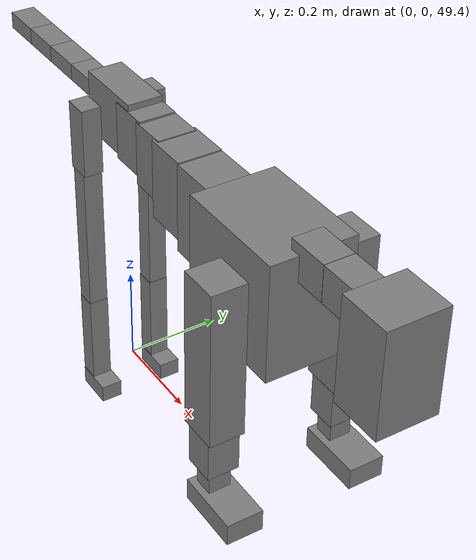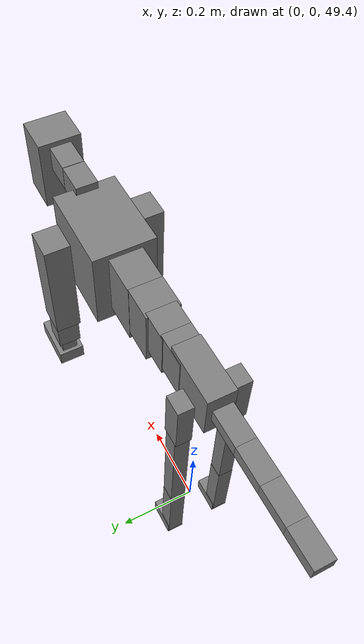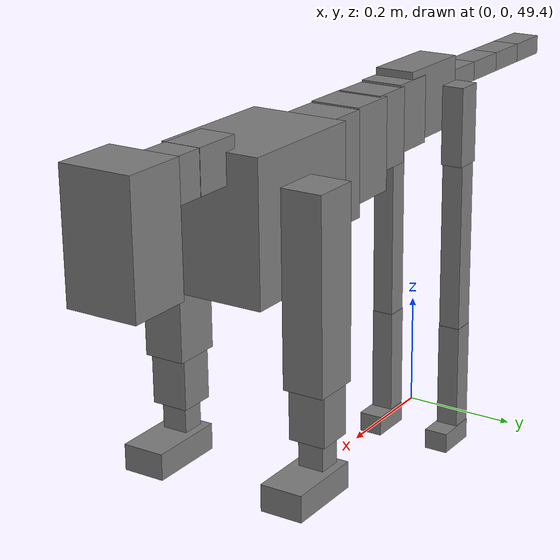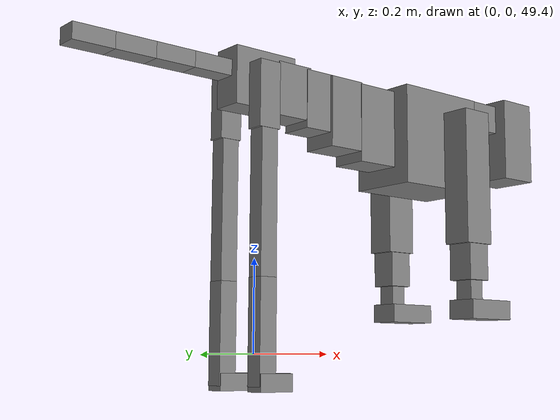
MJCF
<mujoco model="dog">

    <default>
        <joint armature="0.02" stiffness="1" damping="0.2" limited="true"/>
        <geom condim="3" friction="1 0.05 0.05" margin="0.01"/>
        <motor ctrllimited="true" ctrlrange="-1.0 1.0" forcelimited="true" gear="50"/>
    </default>

    <compiler inertiafromgeom="true" angle="radian"/>

    <option timestep="0.016" iterations="50" tolerance="1e-10" solver="Newton" jacobian="dense" cone="pyramidal"/>

    <size nconmax="20000" njmax="60000" nstack="5000000"/>
    <visual>
        <map force="0.1" zfar="30"/>
        <rgba haze="0.15 0.25 0.35 1"/>
        <quality shadowsize="2048"/>
        <global offwidth="800" offheight="800"/>
    </visual>

    <asset>
        <texture type="skybox" builtin="gradient" rgb1="0.3 0.5 0.7" rgb2="0 0 0" width="512" height="512"/>
        <texture name="texplane" type="2d" builtin="checker" rgb1=".2 .3 .4" rgb2=".1 0.15 0.2" width="512" height="512"
                 mark="cross" markrgb=".8 .8 .8"/>
        <texture name="texgeom" type="cube" builtin="flat" mark="cross" width="127" height="1278" rgb1="0.8 0.6 0.4"
                 rgb2="0.8 0.6 0.4" markrgb="1 1 1" random="0.01"/>

        <material name="matplane" reflectance="0.3" texture="texplane" texrepeat="1 1" texuniform="true"/>
        <material name="matgeom" texture="texgeom" texuniform="true" rgba="0.8 0.6 .4 1"/>
    </asset>

    <worldbody>
        <geom name="floor" pos="0 0 0" size="0 0 .25" type="plane" material="matplane" condim="3"/>

        <light directional="false" diffuse=".2 .2 .2" specular="0 0 0" pos="0 0 5" dir="0 0 -1" castshadow="false"/>
        <light mode="targetbodycom" target="torso" directional="false" diffuse=".8 .8 .8" specular="0.3 0.3 0.3"
               pos="0 0 4.0" dir="0 0 -1"/>

        <body name="root" pos="0 0 50">
            <freejoint name="root_1"/>
            <geom type="box" pos="0 0 -0.02" size="0.0774  0.0358  0.063" density="2030"/>

            <body name="spine1" pos="0.054 0 0">
                <joint name="spine1_y" axis="0 1 0" range="0 0.7" limited="true"/>
                <geom type="box" pos="0.02375 0 -0.03" size="0.04375  0.0375  0.05985" density="2030"/>

                <body name="spine2" pos="0.0612 0 0">
                    <joint name="spine2_y" axis="0 1 0" range="-0.15 0.15" limited="true"/>
                    <geom type="box" pos="0.03555  0  -0.04" size="0.04055  0.039  0.06615" density="2030"/>

                    <body name="spine3" pos="0.0730 0 0">
                        <joint name="spine3_y" axis="0 1 0" range="-0.15 0.15" limited="true"/>
                        <geom type="box" pos="0.03555  0  -0.057" size="0.04555  0.0445  0.081" density="2030"/>

                        <body name="spine4" pos="0.0780 0 0">
                            <joint name="spine4_y" axis="0 1 0" range="-0.15 0.15" limited="true"/>
                            <geom type="box" pos="0.05265  0  -0.07" size="0.05265  0.045  0.09135" density="2030"/>

                            <body name="torso" pos="0.1082 0 0">
                                <joint name="torso_y" axis="0 1 0" range="-0.15 0.15" limited="true"/>
                                <geom type="box" pos="0.11925  0  -0.085" size="0.11925  0.085  0.11745"
                                      density="2030"/>

                                <body name="neck1" pos="0.2160  0   0.0180">
                                    <joint name="neck1_y" axis="0 1 0" range="-1.2  -1" limited="true"/>
                                    <geom type="box" pos="0.0423  0  0" size="0.0423  0.03  0.036" density="2325"/>

                                    <body name="neck2" pos="0.0853  0  0">
                                        <joint name="neck2_y" axis="0 1 0" range="0.1  0" limited="true"/>
                                        <geom type="box" pos="0.0423  0  0" size="0.0423  0.03  0.036" density="2325"/>

                                        <body name="head" pos="0.0853  0  0">
                                            <joint name="head_y" axis="0 1 0" range="-0.3  -0.2" limited="true"/>
                                            <geom type="box" pos="0.0531  0  -0.055" size="0.0531  0.06  0.1044"
                                                  density="4030"/>

                                        </body>
                                    </body>
                                </body>

                                <body name="front_shoulder" pos="0.156  0   -0.0480">
                                    <joint name="front_shoulder_y" axis="0 1 0" range="-1 1.5" limited="true"/>
                                    <geom type="box" pos="0 0.13 -0.1330" size="0.0408  0.0349  0.1596" density="1158"/>
                                    <geom type="box" pos="0 -0.13 -0.1330" size="0.0408  0.0349  0.1596"
                                          density="1158"/>

                                    <body name="front_elbow" pos="0  0  -0.2659">
                                        <joint name="front_elbow_y" axis="0 1 0" range="-2 0" limited="true"/>
                                        <geom type="box" pos="0 0.13 -0.0561" size="0.0309  0.0316  0.0561"
                                              density="1081"/>
                                        <geom type="box" pos="0 -0.13 -0.0561" size="0.0309  0.0316  0.0561"
                                              density="1081"/>

                                        <body name="front_wrist" pos="0  0  -0.1122">
                                            <joint name="front_wrist_y" axis="0 1 0" range="-0.2 0" limited="true"/>
                                            <geom type="box" pos="0 0.13 -0.0304" size="0.0199  0.0221  0.0435"
                                                  density="1664"/>
                                            <geom type="box" pos="0 -0.13 -0.0304" size="0.0199  0.0221  0.0435"
                                                  density="1664"/>

                                            <body name="front_finger_end" pos="0  0  -0.0608">
                                                <joint name="front_finger_y" axis="0 1 0" range="-0.4 1"
                                                       limited="true"/>
                                                <geom type="box" pos="0.0364  0.13  -0.0074"
                                                      size="0.0666  0.0364  0.0224" density="1515"/>
                                                <geom type="box" pos="0.0364  -0.13  -0.0074"
                                                      size="0.0666  0.0364  0.0224" density="1515"/>

                                            </body>

                                        </body>
                                    </body>
                                </body>

                            </body>
                        </body>
                    </body>
                </body>
            </body>

            <body name="back_hip" pos="-0.03 0 -0.018">
                <joint name="back_hip_y" axis="0 1 0" range="-1.5 0.3" limited="true"/>
                <geom type="box" pos="0 0.07 -0.0487" size="0.0255  0.0200  0.0715" density="1154"/>
                <geom type="box" pos="0 -0.07 -0.0487" size="0.0255  0.0200  0.0715" density="1154"/>

                <body name="back_knee" pos="0  0  -0.0975">
                    <joint name="back_knee_y" axis="0 1 0" range="0 2.8" limited="true"/>
                    <geom type="box" pos="0 0.07 -0.1708" size="0.0199  0.0196  0.1863" density="1227"/>
                    <geom type="box" pos="0 -0.07 -0.1708" size="0.0199  0.0196  0.1863" density="1227"/>

                    <body name="back_ankle" pos="0  0  -0.3416">
                        <joint name="back_ankle_y" axis="0 1 0" range="-2.2 0" limited="true"/>
                        <geom type="box" pos="0 0.07 -0.0985" size="0.0202  0.0202  0.1098" density="1284"/>
                        <geom type="box" pos="0 -0.07 -0.0985" size="0.0202  0.0202  0.1098" density="1284"/>

                        <body name="back_toe_end" pos="0  0  -0.1970">
                            <joint name="back_toe_y" axis="0 1 0" range="-0.4 1" limited="true"/>
                            <geom type="box" pos="0.0219  0.07  -0.0035" size="0.0402  0.0219  0.0185" density="1515"/>
                            <geom type="box" pos="0.0219  -0.07  -0.0035" size="0.0402  0.0219  0.0185" density="1515"/>

                        </body>
                    </body>
                </body>
            </body>

            <body name="tail1" pos="-0.074 0 -0.006">
                <joint name="tail1_y" axis="0 1 0" range="-0.2 0.2" limited="true"/>
                <geom type="box" pos="-0.0536  0  0" size="0.045  0.025  0.0175" density="1587"/>

                <body name="tail2" pos="-0.09 0 0">
                    <joint name="tail2_y" axis="0 1 0" range="-0.2 0.2" limited="true"/>
                    <geom type="box" pos="-0.0536  0  0" size="0.045  0.025  0.0175" density="1587"/>

                    <body name="tail3" pos="-0.09 0 0">
                        <joint name="tail3_y" axis="0 1 0" range="-0.2 0.2" limited="true"/>
                        <geom type="box" pos="-0.0536  0  0" size="0.045  0.025  0.0175" density="1587"/>

                        <body name="tail4" pos="-0.09 0 0">
                            <joint name="tail4_y" axis="0 1 0" range="-0.2 0.2" limited="true"/>
                            <geom type="box" pos="-0.0536  0  0" size="0.045  0.025  0.0175" density="1587"/>

                        </body>
                    </body>
                </body>
            </body>
        </body>
    </worldbody>

    <actuator>
        <motor joint="spine1_y" forcerange="-150 150     "/>
        <motor joint="spine2_y" forcerange="-150 150     "/>
        <motor joint="spine3_y" forcerange="-150 150     "/>
        <motor joint="spine4_y" forcerange="-150 150     "/>
        <motor joint="torso_y" forcerange="-150 150     "/>
        <motor joint="neck1_y" forcerange="-100 100       "/>
        <motor joint="neck2_y" forcerange="-100 100       "/>
        <motor joint="head_y" forcerange="-150 150       "/>
        <motor joint="front_shoulder_y" forcerange="-179.13 153.43"/>
        <motor joint="front_elbow_y" forcerange="-165.98 163.69"/>
        <motor joint="front_wrist_y" forcerange="-111.82 65.22"/>
        <motor joint="front_finger_y" forcerange="-98.51 55.37"/>
        <motor joint="back_hip_y" forcerange="-249.30 217.60"/>
        <motor joint="back_knee_y" forcerange="-266.43 218.66"/>
        <motor joint="back_angle_y" forcerange="-60.21 163.03"/>
        <motor joint="back_toe_y" forcerange="-74.06 21.43"/>
        <motor joint="tail1_y" forcerange="-50 50     "/>
        <motor joint="tail2_y" forcerange="-50 50     "/>
        <motor joint="tail3_y" forcerange="-50 50     "/>
        <motor joint="tail4_y" forcerange="-50 50     "/>
    </actuator>
</mujoco>
